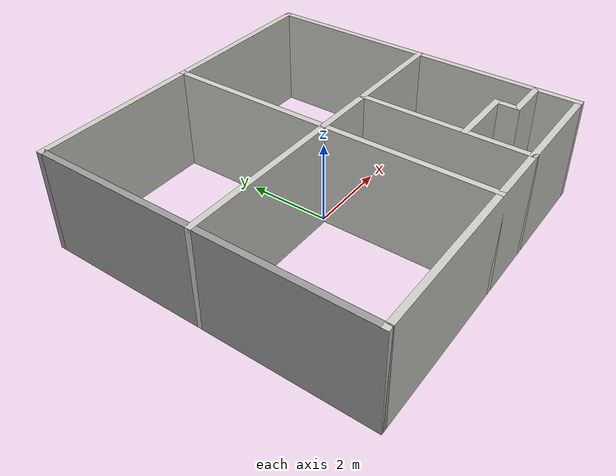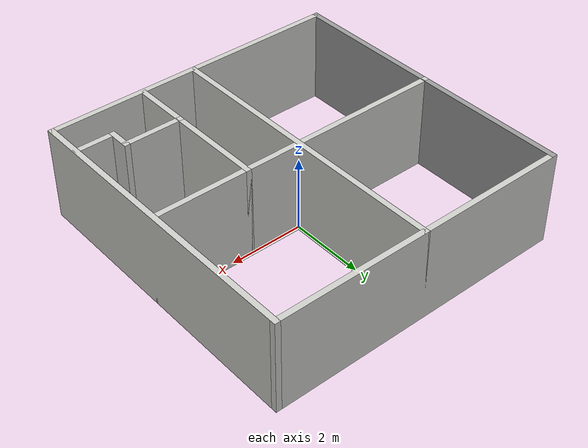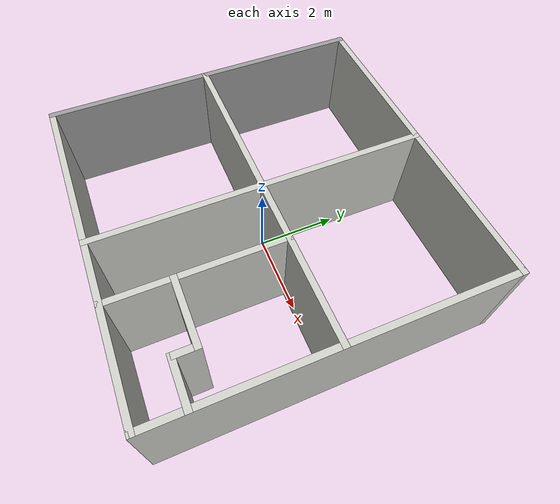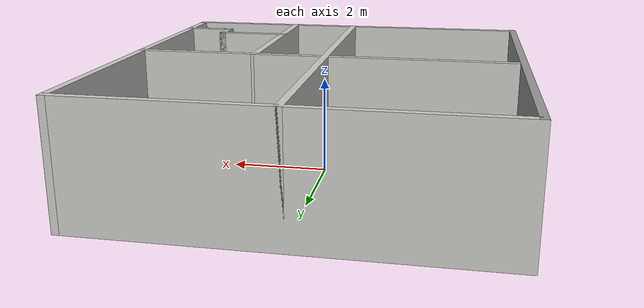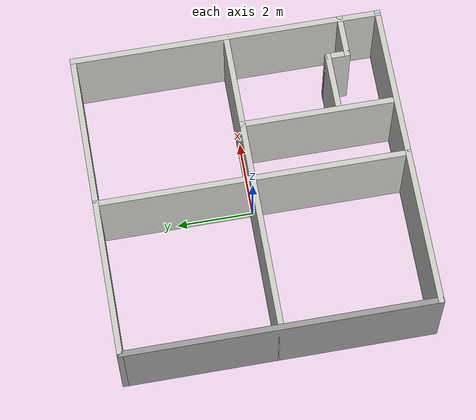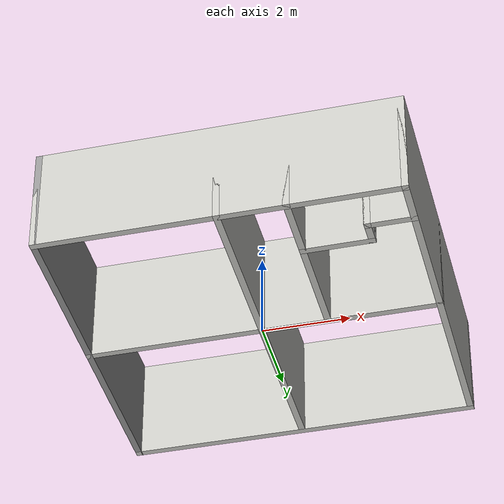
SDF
<?xml version='1.0'?>
<sdf version='1.7'>
  <model name='apartment'>
    <pose>0 0 0 0 -0 0</pose>
    <link name='Wall_10'>
      <collision name='Wall_10_Collision'>
        <geometry>
          <box>
            <size>8.15 0.15 2.5</size>
          </box>
        </geometry>
        <pose>0 0 1.25 0 -0 0</pose>
      </collision>
      <visual name='Wall_10_Visual'>
        <pose>0 0 1.25 0 -0 0</pose>
        <geometry>
          <box>
            <size>8.15 0.15 2.5</size>
          </box>
        </geometry>
        <material>
          <script>
            <uri>file://media/materials/scripts/gazebo.material</uri>
            <name>Gazebo/CeilingTiled</name>
          </script>
          <ambient>1 1 1 1</ambient>
        </material>
        <meta>
          <layer>0</layer>
        </meta>
      </visual>
      <pose>0 0 0 0 -0 -1.5708</pose>
    </link>
    <link name='Wall_12'>
      <collision name='Wall_12_Collision'>
        <geometry>
          <box>
            <size>8.15 0.15 2.5</size>
          </box>
        </geometry>
        <pose>0 0 1.25 0 -0 0</pose>
      </collision>
      <visual name='Wall_12_Visual'>
        <pose>0 0 1.25 0 -0 0</pose>
        <geometry>
          <box>
            <size>8.15 0.15 2.5</size>
          </box>
        </geometry>
        <material>
          <script>
            <uri>file://media/materials/scripts/gazebo.material</uri>
            <name>Gazebo/CeilingTiled</name>
          </script>
          <ambient>1 1 1 1</ambient>
        </material>
        <meta>
          <layer>0</layer>
        </meta>
      </visual>
      <pose>0 0 0 0 -0 0</pose>
    </link>
    <link name='Wall_14'>
      <collision name='Wall_14_Collision'>
        <geometry>
          <box>
            <size>4.15 0.15 2.5</size>
          </box>
        </geometry>
        <pose>0 0 1.25 0 -0 0</pose>
      </collision>
      <visual name='Wall_14_Visual'>
        <pose>0 0 1.25 0 -0 0</pose>
        <geometry>
          <box>
            <size>4.15 0.15 2.5</size>
          </box>
        </geometry>
        <material>
          <script>
            <uri>file://media/materials/scripts/gazebo.material</uri>
            <name>Gazebo/CeilingTiled</name>
          </script>
          <ambient>1 1 1 1</ambient>
        </material>
        <meta>
          <layer>0</layer>
        </meta>
      </visual>
      <pose>1.5 -2 0 0 -0 -1.5708</pose>
    </link>
    <link name='Wall_16'>
      <collision name='Wall_16_Collision'>
        <geometry>
          <box>
            <size>1.65 0.15 2.5</size>
          </box>
        </geometry>
        <pose>0 0 1.25 0 -0 0</pose>
      </collision>
      <visual name='Wall_16_Visual'>
        <pose>0 0 1.25 0 -0 0</pose>
        <geometry>
          <box>
            <size>1.65 0.15 2.5</size>
          </box>
        </geometry>
        <material>
          <script>
            <uri>file://media/materials/scripts/gazebo.material</uri>
            <name>Gazebo/CeilingTiled</name>
          </script>
          <ambient>1 1 1 1</ambient>
        </material>
        <meta>
          <layer>0</layer>
        </meta>
      </visual>
      <pose>2.25 -2.5 0 0 -0 0</pose>
    </link>
    <link name='Wall_17'>
      <collision name='Wall_17_Collision'>
        <geometry>
          <box>
            <size>0.65 0.15 2.5</size>
          </box>
        </geometry>
        <pose>0 0 1.25 0 -0 0</pose>
      </collision>
      <visual name='Wall_17_Visual'>
        <pose>0 0 1.25 0 -0 0</pose>
        <geometry>
          <box>
            <size>0.65 0.15 2.5</size>
          </box>
        </geometry>
        <material>
          <script>
            <uri>file://media/materials/scripts/gazebo.material</uri>
            <name>Gazebo/CeilingTiled</name>
          </script>
          <ambient>1 1 1 1</ambient>
        </material>
        <meta>
          <layer>0</layer>
        </meta>
      </visual>
      <pose>3 -2.75 0 0 -0 -1.5708</pose>
    </link>
    <link name='Wall_18'>
      <collision name='Wall_18_Collision'>
        <geometry>
          <box>
            <size>1.15 0.15 2.5</size>
          </box>
        </geometry>
        <pose>0 0 1.25 0 -0 0</pose>
      </collision>
      <visual name='Wall_18_Visual'>
        <pose>0 0 1.25 0 -0 0</pose>
        <geometry>
          <box>
            <size>1.15 0.15 2.5</size>
          </box>
        </geometry>
        <material>
          <script>
            <uri>file://media/materials/scripts/gazebo.material</uri>
            <name>Gazebo/CeilingTiled</name>
          </script>
          <ambient>1 1 1 1</ambient>
        </material>
        <meta>
          <layer>0</layer>
        </meta>
      </visual>
      <pose>3.5 -3 0 0 -0 0</pose>
    </link>
    <link name='Wall_2'>
      <collision name='Wall_2_Collision'>
        <geometry>
          <box>
            <size>0.15 0.15 2.5</size>
          </box>
        </geometry>
        <pose>0 0 1.25 0 -0 0</pose>
      </collision>
      <visual name='Wall_2_Visual'>
        <pose>0 0 1.25 0 -0 0</pose>
        <geometry>
          <box>
            <size>0.15 0.15 2.5</size>
          </box>
        </geometry>
        <material>
          <script>
            <uri>file://media/materials/scripts/gazebo.material</uri>
            <name>Gazebo/Grey</name>
          </script>
          <ambient>1 1 1 1</ambient>
        </material>
        <meta>
          <layer>0</layer>
        </meta>
      </visual>
      <pose>-4 4 0 0 -0 0</pose>
    </link>
    <link name='Wall_5'>
      <collision name='Wall_5_Collision'>
        <geometry>
          <box>
            <size>8.15 0.15 2.5</size>
          </box>
        </geometry>
        <pose>0 0 1.25 0 -0 0</pose>
      </collision>
      <visual name='Wall_5_Visual'>
        <pose>0 0 1.25 0 -0 0</pose>
        <geometry>
          <box>
            <size>8.15 0.15 2.5</size>
          </box>
        </geometry>
        <material>
          <script>
            <uri>file://media/materials/scripts/gazebo.material</uri>
            <name>Gazebo/CeilingTiled</name>
          </script>
          <ambient>1 1 1 1</ambient>
        </material>
        <meta>
          <layer>0</layer>
        </meta>
      </visual>
      <pose>0 -4 0 0 -0 0</pose>
    </link>
    <link name='Wall_6'>
      <collision name='Wall_6_Collision'>
        <geometry>
          <box>
            <size>8.15 0.15 2.5</size>
          </box>
        </geometry>
        <pose>0 0 1.25 0 -0 0</pose>
      </collision>
      <visual name='Wall_6_Visual'>
        <pose>0 0 1.25 0 -0 0</pose>
        <geometry>
          <box>
            <size>8.15 0.15 2.5</size>
          </box>
        </geometry>
        <material>
          <script>
            <uri>file://media/materials/scripts/gazebo.material</uri>
            <name>Gazebo/CeilingTiled</name>
          </script>
          <ambient>1 1 1 1</ambient>
        </material>
        <meta>
          <layer>0</layer>
        </meta>
      </visual>
      <pose>4 0 0 0 -0 1.5708</pose>
    </link>
    <link name='Wall_7'>
      <collision name='Wall_7_Collision'>
        <geometry>
          <box>
            <size>8.15 0.15 2.5</size>
          </box>
        </geometry>
        <pose>0 0 1.25 0 -0 0</pose>
      </collision>
      <visual name='Wall_7_Visual'>
        <pose>0 0 1.25 0 -0 0</pose>
        <geometry>
          <box>
            <size>8.15 0.15 2.5</size>
          </box>
        </geometry>
        <material>
          <script>
            <uri>file://media/materials/scripts/gazebo.material</uri>
            <name>Gazebo/CeilingTiled</name>
          </script>
          <ambient>1 1 1 1</ambient>
        </material>
        <meta>
          <layer>0</layer>
        </meta>
      </visual>
      <pose>0 4 0 0 -0 3.14159</pose>
    </link>
    <link name='Wall_8'>
      <collision name='Wall_8_Collision'>
        <geometry>
          <box>
            <size>8.15 0.15 2.5</size>
          </box>
        </geometry>
        <pose>0 0 1.25 0 -0 0</pose>
      </collision>
      <visual name='Wall_8_Visual'>
        <pose>0 0 1.25 0 -0 0</pose>
        <geometry>
          <box>
            <size>8.15 0.15 2.5</size>
          </box>
        </geometry>
        <material>
          <script>
            <uri>file://media/materials/scripts/gazebo.material</uri>
            <name>Gazebo/Grey</name>
          </script>
          <ambient>1 1 1 1</ambient>
        </material>
        <meta>
          <layer>0</layer>
        </meta>
      </visual>
      <pose>-4 0 0 0 -0 -1.5708</pose>
    </link>
    <static>1</static>
  </model>
</sdf>
